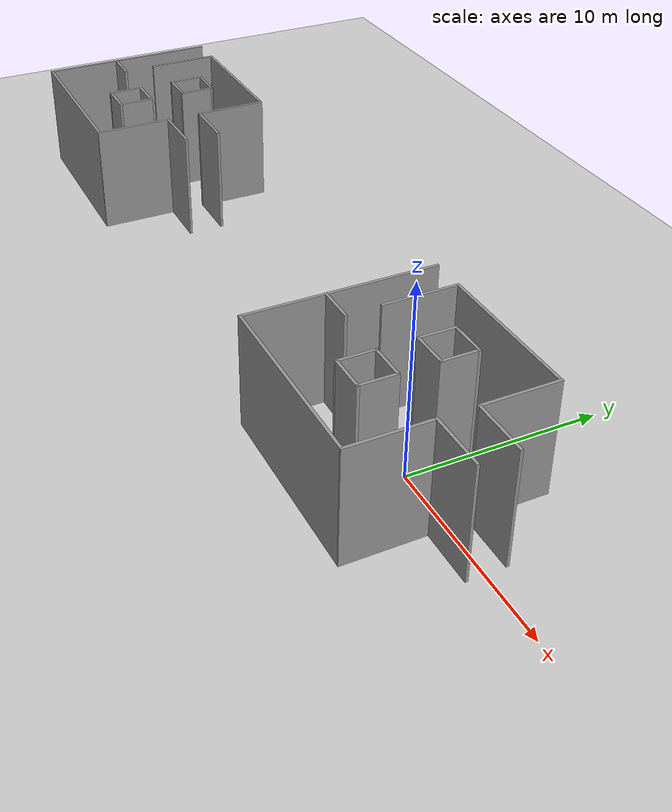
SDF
<sdf version="1.6">
 <world name="default">
  <light name="sun" type="directional">
   <pose>0 0 10 0 -0 0</pose>
   <diffuse>0.8 0.8 0.8 1</diffuse>
   <specular>0.2 0.2 0.2 1</specular>
   <attenuation>
    <range>1000</range>
    <constant>0.9</constant>
    <linear>0.01</linear>
    <quadratic>0.001</quadratic>
   </attenuation>
   <direction>-0.5 0.1 -0.9</direction>
  </light>
  <model name="ground_plane">
   <static>1</static>
   <link name="link">
    <collision name="collision">
     <geometry><plane><normal>0 0 1</normal><size>100 100</size></plane></geometry>
     <surface>
      <contact><collide_bitmask>65535</collide_bitmask></contact>
      <friction><ode><mu>100</mu><mu2>50</mu2></ode></friction>
     </surface>
    </collision>
    <visual name="visual">
     <cast_shadows>0</cast_shadows>
     <geometry><plane><normal>0 0 1</normal><size>100 100</size></plane></geometry>
     <material>
      <script><uri>file://media/materials/scripts/gazebo.material</uri><name>Gazebo/Grey</name></script>
     </material>
    </visual>
   </link>
  </model>
  <gravity>0 0 -9.8</gravity>
  <magnetic_field>6e-06 2.3e-05 -4.2e-05</magnetic_field>
  <atmosphere type="adiabatic"/>
  <physics name="default_physics" default="0" type="ode">
   <max_step_size>0.001</max_step_size>
   <real_time_factor>1</real_time_factor>
   <real_time_update_rate>1000</real_time_update_rate>
  </physics>
  <scene><ambient>0.4 0.4 0.4 1</ambient><background>0.7 0.7 0.7 1</background><shadows>1</shadows></scene>
  <spherical_coordinates>
   <surface_model>EARTH_WGS84</surface_model>
   <latitude_deg>0</latitude_deg>
   <longitude_deg>0</longitude_deg>
   <elevation>0</elevation>
   <heading_deg>0</heading_deg>
  </spherical_coordinates>
  <model name="floor10">
   <link name="Wall_48">
    <collision name="Wall_48_Collision">
     <geometry><box><size>10 0.15 6</size></box></geometry>
     <pose>0 0 3 0 -0 0</pose>
    </collision>
    <visual name="Wall_48_Visual">
     <pose>0 0 3 0 -0 0</pose>
     <geometry><box><size>10 0.15 6</size></box></geometry>
     <material>
      <script><uri>file://media/materials/scripts/gazebo.material</uri><name>Gazebo/Grey</name></script>
      <ambient>1 1 1 1</ambient>
     </material>
     <meta><layer>0</layer></meta>
    </visual>
    <pose>-6.275 -0.000226 0 0 0 -1.5708</pose>
   </link>
   <link name="Wall_53">
    <collision name="Wall_53_Collision">
     <geometry><box><size>4 0.15 6</size></box></geometry>
     <pose>0 0 3 0 -0 0</pose>
    </collision>
    <visual name="Wall_53_Visual">
     <pose>0 0 3 0 -0 0</pose>
     <geometry><box><size>4 0.15 6</size></box></geometry>
     <material>
      <script><uri>file://media/materials/scripts/gazebo.material</uri><name>Gazebo/Grey</name></script>
      <ambient>1 1 1 1</ambient>
     </material>
     <meta><layer>0</layer></meta>
    </visual>
    <pose>-4.425 2.99977 0 0 0 -1.5708</pose>
   </link>
   <link name="Wall_55">
    <collision name="Wall_55_Collision">
     <geometry><box><size>2 0.15 6</size></box></geometry>
     <pose>0 0 3 0 -0 0</pose>
    </collision>
    <visual name="Wall_55_Visual">
     <pose>0 0 3 0 -0 0</pose>
     <geometry><box><size>2 0.15 6</size></box></geometry>
     <material>
      <script><uri>file://media/materials/scripts/gazebo.material</uri><name>Gazebo/Grey</name></script>
      <ambient>1 1 1 1</ambient>
     </material>
     <meta><layer>0</layer></meta>
    </visual>
    <pose>-5.35 -0.775226 0 0 -0 3.14159</pose>
   </link>
   <link name="Wall_57">
    <collision name="Wall_57_Collision">
     <geometry><box><size>8 0.15 6</size></box></geometry>
     <pose>0 0 3 0 -0 0</pose>
    </collision>
    <visual name="Wall_57_Visual">
     <pose>0 0 3 0 -0 0</pose>
     <geometry><box><size>8 0.15 6</size></box></geometry>
     <material>
      <script><uri>file://media/materials/scripts/gazebo.material</uri><name>Gazebo/Grey</name></script>
      <ambient>1 1 1 1</ambient>
     </material>
     <meta><layer>0</layer></meta>
    </visual>
    <pose>-0.5 4.92477 0 0 -0 0</pose>
   </link>
   <link name="Wall_59">
    <collision name="Wall_59_Collision">
     <geometry><box><size>2 0.15 6</size></box></geometry>
     <pose>0 0 3 0 -0 0</pose>
    </collision>
    <visual name="Wall_59_Visual">
     <pose>0 0 3 0 -0 0</pose>
     <geometry><box><size>2 0.15 6</size></box></geometry>
     <material>
      <script><uri>file://media/materials/scripts/gazebo.material</uri><name>Gazebo/Grey</name></script>
      <ambient>1 1 1 1</ambient>
     </material>
     <meta><layer>0</layer></meta>
    </visual>
    <pose>-1.575 2.14977 0 0 0 -1.5708</pose>
   </link>
   <link name="Wall_60">
    <collision name="Wall_60_Collision">
     <geometry><box><size>2 0.15 6</size></box></geometry>
     <pose>0 0 3 0 -0 0</pose>
    </collision>
    <visual name="Wall_60_Visual">
     <pose>0 0 3 0 -0 0</pose>
     <geometry><box><size>2 0.15 6</size></box></geometry>
     <material>
      <script><uri>file://media/materials/scripts/gazebo.material</uri><name>Gazebo/Grey</name></script>
      <ambient>1 1 1 1</ambient>
     </material>
     <meta><layer>0</layer></meta>
    </visual>
    <pose>-0.649999 1.22477 0 0 -0 0</pose>
   </link>
   <link name="Wall_61">
    <collision name="Wall_61_Collision">
     <geometry><box><size>2 0.15 6</size></box></geometry>
     <pose>0 0 3 0 -0 0</pose>
    </collision>
    <visual name="Wall_61_Visual">
     <pose>0 0 3 0 -0 0</pose>
     <geometry><box><size>2 0.15 6</size></box></geometry>
     <material>
      <script><uri>file://media/materials/scripts/gazebo.material</uri><name>Gazebo/Grey</name></script>
      <ambient>1 1 1 1</ambient>
     </material>
     <meta><layer>0</layer></meta>
    </visual>
    <pose>0.275001 2.14977 0 0 -0 1.5708</pose>
   </link>
   <link name="Wall_62">
    <collision name="Wall_62_Collision">
     <geometry><box><size>2 0.15 6</size></box></geometry>
     <pose>0 0 3 0 -0 0</pose>
    </collision>
    <visual name="Wall_62_Visual">
     <pose>0 0 3 0 -0 0</pose>
     <geometry><box><size>2 0.15 6</size></box></geometry>
     <material>
      <script><uri>file://media/materials/scripts/gazebo.material</uri><name>Gazebo/Grey</name></script>
      <ambient>1 1 1 1</ambient>
     </material>
     <meta><layer>0</layer></meta>
    </visual>
    <pose>-0.649999 3.07477 0 0 -0 3.14159</pose>
   </link>
   <link name="Wall_64">
    <collision name="Wall_64_Collision">
     <geometry><box><size>2 0.15 6</size></box></geometry>
     <pose>0 0 3 0 -0 0</pose>
    </collision>
    <visual name="Wall_64_Visual">
     <pose>0 0 3 0 -0 0</pose>
     <geometry><box><size>2 0.15 6</size></box></geometry>
     <material>
      <script><uri>file://media/materials/scripts/gazebo.material</uri><name>Gazebo/Grey</name></script>
      <ambient>1 1 1 1</ambient>
     </material>
     <meta><layer>0</layer></meta>
    </visual>
    <pose>-0.649999 -0.775226 0 0 -0 0</pose>
   </link>
   <link name="Wall_65">
    <collision name="Wall_65_Collision">
     <geometry><box><size>2 0.15 6</size></box></geometry>
     <pose>0 0 3 0 -0 0</pose>
    </collision>
    <visual name="Wall_65_Visual">
     <pose>0 0 3 0 -0 0</pose>
     <geometry><box><size>2 0.15 6</size></box></geometry>
     <material>
      <script><uri>file://media/materials/scripts/gazebo.material</uri><name>Gazebo/Grey</name></script>
      <ambient>1 1 1 1</ambient>
     </material>
     <meta><layer>0</layer></meta>
    </visual>
    <pose>0.275001 -1.70023 0 0 0 -1.5708</pose>
   </link>
   <link name="Wall_66">
    <collision name="Wall_66_Collision">
     <geometry><box><size>2 0.15 6</size></box></geometry>
     <pose>0 0 3 0 -0 0</pose>
    </collision>
    <visual name="Wall_66_Visual">
     <pose>0 0 3 0 -0 0</pose>
     <geometry><box><size>2 0.15 6</size></box></geometry>
     <material>
      <script><uri>file://media/materials/scripts/gazebo.material</uri><name>Gazebo/Grey</name></script>
      <ambient>1 1 1 1</ambient>
     </material>
     <meta><layer>0</layer></meta>
    </visual>
    <pose>-0.649999 -2.62523 0 0 -0 3.14159</pose>
   </link>
   <link name="Wall_67">
    <collision name="Wall_67_Collision">
     <geometry><box><size>2 0.15 6</size></box></geometry>
     <pose>0 0 3 0 -0 0</pose>
    </collision>
    <visual name="Wall_67_Visual">
     <pose>0 0 3 0 -0 0</pose>
     <geometry><box><size>2 0.15 6</size></box></geometry>
     <material>
      <script><uri>file://media/materials/scripts/gazebo.material</uri><name>Gazebo/Grey</name></script>
      <ambient>1 1 1 1</ambient>
     </material>
     <meta><layer>0</layer></meta>
    </visual>
    <pose>-1.575 -1.70023 0 0 -0 1.5708</pose>
   </link>
   <link name="Wall_72">
    <collision name="Wall_72_Collision">
     <geometry><box><size>2 0.15 2.5</size></box></geometry>
     <pose>0 0 1.25 0 -0 0</pose>
    </collision>
    <visual name="Wall_72_Visual">
     <pose>0 0 1.25 0 -0 0</pose>
     <geometry><box><size>2 0.15 2.5</size></box></geometry>
     <material>
      <script><uri>file://media/materials/scripts/gazebo.material</uri><name>Gazebo/Grey</name></script>
      <ambient>1 1 1 1</ambient>
     </material>
     <meta><layer>0</layer></meta>
    </visual>
    <pose>2.49984 4.92499 0 0 -0 3.14136</pose>
   </link>
   <link name="Wall_74">
    <collision name="Wall_74_Collision">
     <geometry><box><size>3 0.15 6</size></box></geometry>
     <pose>0 0 3 0 -0 0</pose>
    </collision>
    <visual name="Wall_74_Visual">
     <pose>0 0 3 0 -0 0</pose>
     <geometry><box><size>3 0.15 6</size></box></geometry>
     <material>
      <script><uri>file://media/materials/scripts/gazebo.material</uri><name>Gazebo/Grey</name></script>
      <ambient>1 1 1 1</ambient>
     </material>
     <meta><layer>0</layer></meta>
    </visual>
    <pose>4.85 1.07477 0 0 -0 3.14159</pose>
   </link>
   <link name="Wall_76">
    <collision name="Wall_76_Collision">
     <geometry><box><size>3 0.15 6</size></box></geometry>
     <pose>0 0 3 0 -0 0</pose>
    </collision>
    <visual name="Wall_76_Visual">
     <pose>0 0 3 0 -0 0</pose>
     <geometry><box><size>3 0.15 6</size></box></geometry>
     <material>
      <script><uri>file://media/materials/scripts/gazebo.material</uri><name>Gazebo/Grey</name></script>
      <ambient>1 1 1 1</ambient>
     </material>
     <meta><layer>0</layer></meta>
    </visual>
    <pose>4.85 -0.824226 0 0 -0 0</pose>
   </link>
   <link name="Wall_79">
    <collision name="Wall_79_Collision">
     <geometry><box><size>4 0.15 6</size></box></geometry>
     <pose>0 0 3 0 -0 0</pose>
    </collision>
    <visual name="Wall_79_Visual">
     <pose>0 0 3 0 -0 0</pose>
     <geometry><box><size>4 0.15 6</size></box></geometry>
     <material>
      <script><uri>file://media/materials/scripts/gazebo.material</uri><name>Gazebo/Grey</name></script>
      <ambient>1 1 1 1</ambient>
     </material>
     <meta><layer>0</layer></meta>
    </visual>
    <pose>3.425 2.99977 0 0 0 -1.5708</pose>
   </link>
   <link name="Wall_85">
    <collision name="Wall_85_Collision">
     <geometry><box><size>4.25 0.15 6</size></box></geometry>
     <pose>0 0 3 0 -0 0</pose>
    </collision>
    <visual name="Wall_85_Visual">
     <pose>0 0 3 0 -0 0</pose>
     <geometry><box><size>4.25 0.15 6</size></box></geometry>
     <material>
      <script><uri>file://media/materials/scripts/gazebo.material</uri><name>Gazebo/Grey</name></script>
      <ambient>1 1 1 1</ambient>
     </material>
     <meta><layer>0</layer></meta>
    </visual>
    <pose>3.425 -2.87423 0 0 0 -1.5708</pose>
   </link>
   <link name="Wall_87">
    <collision name="Wall_87_Collision">
     <geometry><box><size>9.75 0.15 6</size></box></geometry>
     <pose>0 0 3 0 -0 0</pose>
    </collision>
    <visual name="Wall_87_Visual">
     <pose>0 0 3 0 -0 0</pose>
     <geometry><box><size>9.75 0.15 6</size></box></geometry>
     <material>
      <script><uri>file://media/materials/scripts/gazebo.material</uri><name>Gazebo/Grey</name></script>
      <ambient>1 1 1 1</ambient>
     </material>
     <meta><layer>0</layer></meta>
    </visual>
    <pose>-1.475 -4.92523 0 0 -0 0</pose>
   </link>
   <static>1</static>
  </model>
  <model name="floor10_clone">
   <pose>-30 0 0 0 -0 0</pose>
   <link name="Wall_48">
    <collision name="Wall_48_Collision">
     <geometry><box><size>10 0.15 6</size></box></geometry>
     <pose>0 0 3 0 -0 0</pose>
    </collision>
    <visual name="Wall_48_Visual">
     <pose>0 0 3 0 -0 0</pose>
     <geometry><box><size>10 0.15 6</size></box></geometry>
     <material>
      <script><uri>file://media/materials/scripts/gazebo.material</uri><name>Gazebo/Grey</name></script>
      <ambient>1 1 1 1</ambient>
     </material>
     <meta><layer>0</layer></meta>
    </visual>
    <pose>-6.275 -0.000226 0 0 0 -1.5708</pose>
   </link>
   <link name="Wall_53">
    <collision name="Wall_53_Collision">
     <geometry><box><size>4 0.15 6</size></box></geometry>
     <pose>0 0 3 0 -0 0</pose>
    </collision>
    <visual name="Wall_53_Visual">
     <pose>0 0 3 0 -0 0</pose>
     <geometry><box><size>4 0.15 6</size></box></geometry>
     <material>
      <script><uri>file://media/materials/scripts/gazebo.material</uri><name>Gazebo/Grey</name></script>
      <ambient>1 1 1 1</ambient>
     </material>
     <meta><layer>0</layer></meta>
    </visual>
    <pose>-4.425 2.99977 0 0 0 -1.5708</pose>
   </link>
   <link name="Wall_55">
    <collision name="Wall_55_Collision">
     <geometry><box><size>2 0.15 6</size></box></geometry>
     <pose>0 0 3 0 -0 0</pose>
    </collision>
    <visual name="Wall_55_Visual">
     <pose>0 0 3 0 -0 0</pose>
     <geometry><box><size>2 0.15 6</size></box></geometry>
     <material>
      <script><uri>file://media/materials/scripts/gazebo.material</uri><name>Gazebo/Grey</name></script>
      <ambient>1 1 1 1</ambient>
     </material>
     <meta><layer>0</layer></meta>
    </visual>
    <pose>-5.35 -0.775226 0 0 -0 3.14159</pose>
   </link>
   <link name="Wall_57">
    <collision name="Wall_57_Collision">
     <geometry><box><size>8 0.15 6</size></box></geometry>
     <pose>0 0 3 0 -0 0</pose>
    </collision>
    <visual name="Wall_57_Visual">
     <pose>0 0 3 0 -0 0</pose>
     <geometry><box><size>8 0.15 6</size></box></geometry>
     <material>
      <script><uri>file://media/materials/scripts/gazebo.material</uri><name>Gazebo/Grey</name></script>
      <ambient>1 1 1 1</ambient>
     </material>
     <meta><layer>0</layer></meta>
    </visual>
    <pose>-0.5 4.92477 0 0 -0 0</pose>
   </link>
   <link name="Wall_59">
    <collision name="Wall_59_Collision">
     <geometry><box><size>2 0.15 6</size></box></geometry>
     <pose>0 0 3 0 -0 0</pose>
    </collision>
    <visual name="Wall_59_Visual">
     <pose>0 0 3 0 -0 0</pose>
     <geometry><box><size>2 0.15 6</size></box></geometry>
     <material>
      <script><uri>file://media/materials/scripts/gazebo.material</uri><name>Gazebo/Grey</name></script>
      <ambient>1 1 1 1</ambient>
     </material>
     <meta><layer>0</layer></meta>
    </visual>
    <pose>-1.575 2.14977 0 0 0 -1.5708</pose>
   </link>
   <link name="Wall_60">
    <collision name="Wall_60_Collision">
     <geometry><box><size>2 0.15 6</size></box></geometry>
     <pose>0 0 3 0 -0 0</pose>
    </collision>
    <visual name="Wall_60_Visual">
     <pose>0 0 3 0 -0 0</pose>
     <geometry><box><size>2 0.15 6</size></box></geometry>
     <material>
      <script><uri>file://media/materials/scripts/gazebo.material</uri><name>Gazebo/Grey</name></script>
      <ambient>1 1 1 1</ambient>
     </material>
     <meta><layer>0</layer></meta>
    </visual>
    <pose>-0.649999 1.22477 0 0 -0 0</pose>
   </link>
   <link name="Wall_61">
    <collision name="Wall_61_Collision">
     <geometry><box><size>2 0.15 6</size></box></geometry>
     <pose>0 0 3 0 -0 0</pose>
    </collision>
    <visual name="Wall_61_Visual">
     <pose>0 0 3 0 -0 0</pose>
     <geometry><box><size>2 0.15 6</size></box></geometry>
     <material>
      <script><uri>file://media/materials/scripts/gazebo.material</uri><name>Gazebo/Grey</name></script>
      <ambient>1 1 1 1</ambient>
     </material>
     <meta><layer>0</layer></meta>
    </visual>
    <pose>0.275001 2.14977 0 0 -0 1.5708</pose>
   </link>
   <link name="Wall_62">
    <collision name="Wall_62_Collision">
     <geometry><box><size>2 0.15 6</size></box></geometry>
     <pose>0 0 3 0 -0 0</pose>
    </collision>
    <visual name="Wall_62_Visual">
     <pose>0 0 3 0 -0 0</pose>
     <geometry><box><size>2 0.15 6</size></box></geometry>
     <material>
      <script><uri>file://media/materials/scripts/gazebo.material</uri><name>Gazebo/Grey</name></script>
      <ambient>1 1 1 1</ambient>
     </material>
     <meta><layer>0</layer></meta>
    </visual>
    <pose>-0.649999 3.07477 0 0 -0 3.14159</pose>
   </link>
   <link name="Wall_64">
    <collision name="Wall_64_Collision">
     <geometry><box><size>2 0.15 6</size></box></geometry>
     <pose>0 0 3 0 -0 0</pose>
    </collision>
    <visual name="Wall_64_Visual">
     <pose>0 0 3 0 -0 0</pose>
     <geometry><box><size>2 0.15 6</size></box></geometry>
     <material>
      <script><uri>file://media/materials/scripts/gazebo.material</uri><name>Gazebo/Grey</name></script>
      <ambient>1 1 1 1</ambient>
     </material>
     <meta><layer>0</layer></meta>
    </visual>
    <pose>-0.649999 -0.775226 0 0 -0 0</pose>
   </link>
   <link name="Wall_65">
    <collision name="Wall_65_Collision">
     <geometry><box><size>2 0.15 6</size></box></geometry>
     <pose>0 0 3 0 -0 0</pose>
    </collision>
    <visual name="Wall_65_Visual">
     <pose>0 0 3 0 -0 0</pose>
     <geometry><box><size>2 0.15 6</size></box></geometry>
     <material>
      <script><uri>file://media/materials/scripts/gazebo.material</uri><name>Gazebo/Grey</name></script>
      <ambient>1 1 1 1</ambient>
     </material>
     <meta><layer>0</layer></meta>
    </visual>
    <pose>0.275001 -1.70023 0 0 0 -1.5708</pose>
   </link>
   <link name="Wall_66">
    <collision name="Wall_66_Collision">
     <geometry><box><size>2 0.15 6</size></box></geometry>
     <pose>0 0 3 0 -0 0</pose>
    </collision>
    <visual name="Wall_66_Visual">
     <pose>0 0 3 0 -0 0</pose>
     <geometry><box><size>2 0.15 6</size></box></geometry>
     <material>
      <script><uri>file://media/materials/scripts/gazebo.material</uri><name>Gazebo/Grey</name></script>
      <ambient>1 1 1 1</ambient>
     </material>
     <meta><layer>0</layer></meta>
    </visual>
    <pose>-0.649999 -2.62523 0 0 -0 3.14159</pose>
   </link>
   <link name="Wall_67">
    <collision name="Wall_67_Collision">
     <geometry><box><size>2 0.15 6</size></box></geometry>
     <pose>0 0 3 0 -0 0</pose>
    </collision>
    <visual name="Wall_67_Visual">
     <pose>0 0 3 0 -0 0</pose>
     <geometry><box><size>2 0.15 6</size></box></geometry>
     <material>
      <script><uri>file://media/materials/scripts/gazebo.material</uri><name>Gazebo/Grey</name></script>
      <ambient>1 1 1 1</ambient>
     </material>
     <meta><layer>0</layer></meta>
    </visual>
    <pose>-1.575 -1.70023 0 0 -0 1.5708</pose>
   </link>
   <link name="Wall_72">
    <collision name="Wall_72_Collision">
     <geometry><box><size>2 0.15 2.5</size></box></geometry>
     <pose>0 0 1.25 0 -0 0</pose>
    </collision>
    <visual name="Wall_72_Visual">
     <pose>0 0 1.25 0 -0 0</pose>
     <geometry><box><size>2 0.15 2.5</size></box></geometry>
     <material>
      <script><uri>file://media/materials/scripts/gazebo.material</uri><name>Gazebo/Grey</name></script>
      <ambient>1 1 1 1</ambient>
     </material>
     <meta><layer>0</layer></meta>
    </visual>
    <pose>2.49984 4.92499 0 0 -0 3.14136</pose>
   </link>
   <link name="Wall_74">
    <collision name="Wall_74_Collision">
     <geometry><box><size>3 0.15 6</size></box></geometry>
     <pose>0 0 3 0 -0 0</pose>
    </collision>
    <visual name="Wall_74_Visual">
     <pose>0 0 3 0 -0 0</pose>
     <geometry><box><size>3 0.15 6</size></box></geometry>
     <material>
      <script><uri>file://media/materials/scripts/gazebo.material</uri><name>Gazebo/Grey</name></script>
      <ambient>1 1 1 1</ambient>
     </material>
     <meta><layer>0</layer></meta>
    </visual>
    <pose>4.85 1.07477 0 0 -0 3.14159</pose>
   </link>
   <link name="Wall_76">
    <collision name="Wall_76_Collision">
     <geometry><box><size>3 0.15 6</size></box></geometry>
     <pose>0 0 3 0 -0 0</pose>
    </collision>
    <visual name="Wall_76_Visual">
     <pose>0 0 3 0 -0 0</pose>
     <geometry><box><size>3 0.15 6</size></box></geometry>
     <material>
      <script><uri>file://media/materials/scripts/gazebo.material</uri><name>Gazebo/Grey</name></script>
      <ambient>1 1 1 1</ambient>
     </material>
     <meta><layer>0</layer></meta>
    </visual>
    <pose>4.85 -0.824226 0 0 -0 0</pose>
   </link>
   <link name="Wall_79">
    <collision name="Wall_79_Collision">
     <geometry><box><size>4 0.15 6</size></box></geometry>
     <pose>0 0 3 0 -0 0</pose>
    </collision>
    <visual name="Wall_79_Visual">
     <pose>0 0 3 0 -0 0</pose>
     <geometry><box><size>4 0.15 6</size></box></geometry>
     <material>
      <script><uri>file://media/materials/scripts/gazebo.material</uri><name>Gazebo/Grey</name></script>
      <ambient>1 1 1 1</ambient>
     </material>
     <meta><layer>0</layer></meta>
    </visual>
    <pose>3.425 2.99977 0 0 0 -1.5708</pose>
   </link>
   <link name="Wall_85">
    <collision name="Wall_85_Collision">
     <geometry><box><size>4.25 0.15 6</size></box></geometry>
     <pose>0 0 3 0 -0 0</pose>
    </collision>
    <visual name="Wall_85_Visual">
     <pose>0 0 3 0 -0 0</pose>
     <geometry><box><size>4.25 0.15 6</size></box></geometry>
     <material>
      <script><uri>file://media/materials/scripts/gazebo.material</uri><name>Gazebo/Grey</name></script>
      <ambient>1 1 1 1</ambient>
     </material>
     <meta><layer>0</layer></meta>
    </visual>
    <pose>3.425 -2.87423 0 0 0 -1.5708</pose>
   </link>
   <link name="Wall_87">
    <collision name="Wall_87_Collision">
     <geometry><box><size>9.75 0.15 6</size></box></geometry>
     <pose>0 0 3 0 -0 0</pose>
    </collision>
    <visual name="Wall_87_Visual">
     <pose>0 0 3 0 -0 0</pose>
     <geometry><box><size>9.75 0.15 6</size></box></geometry>
     <material>
      <script><uri>file://media/materials/scripts/gazebo.material</uri><name>Gazebo/Grey</name></script>
      <ambient>1 1 1 1</ambient>
     </material>
     <meta><layer>0</layer></meta>
    </visual>
    <pose>-1.475 -4.92523 0 0 -0 0</pose>
   </link>
   <static>1</static>
  </model>
 </world>
</sdf>
